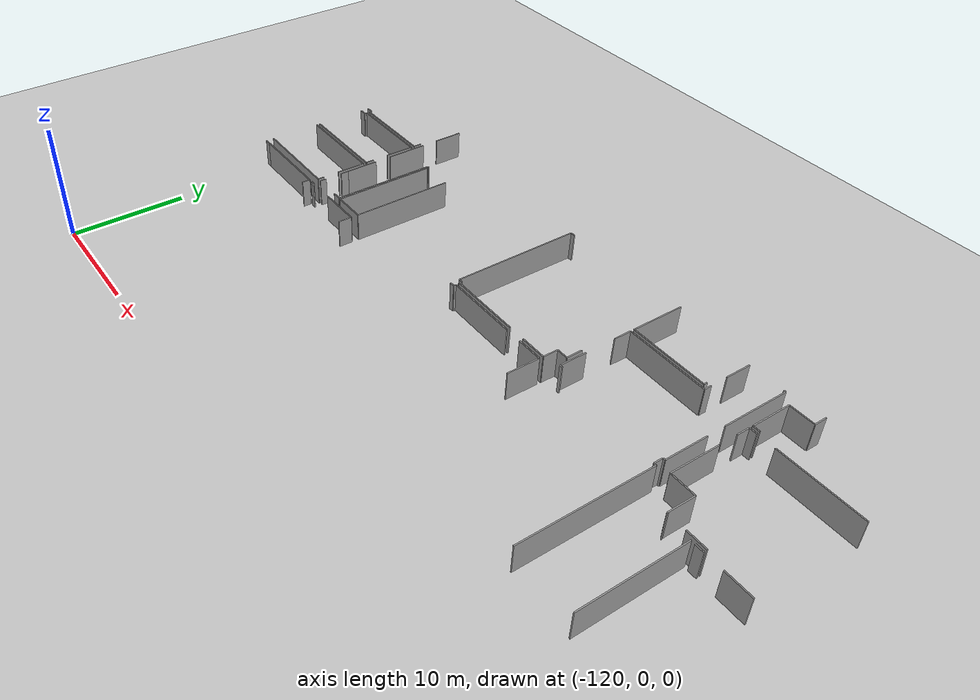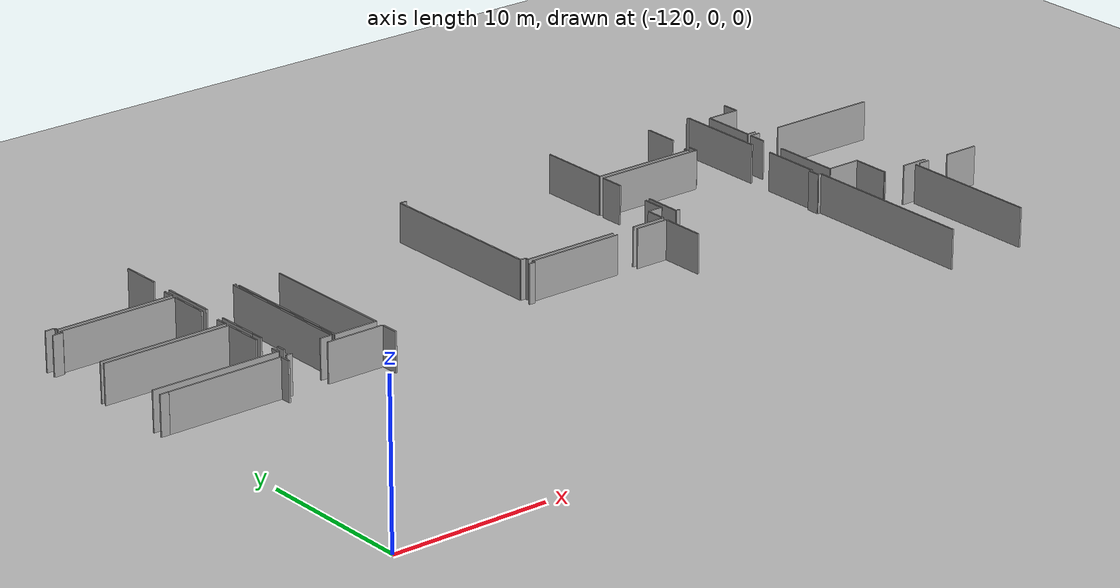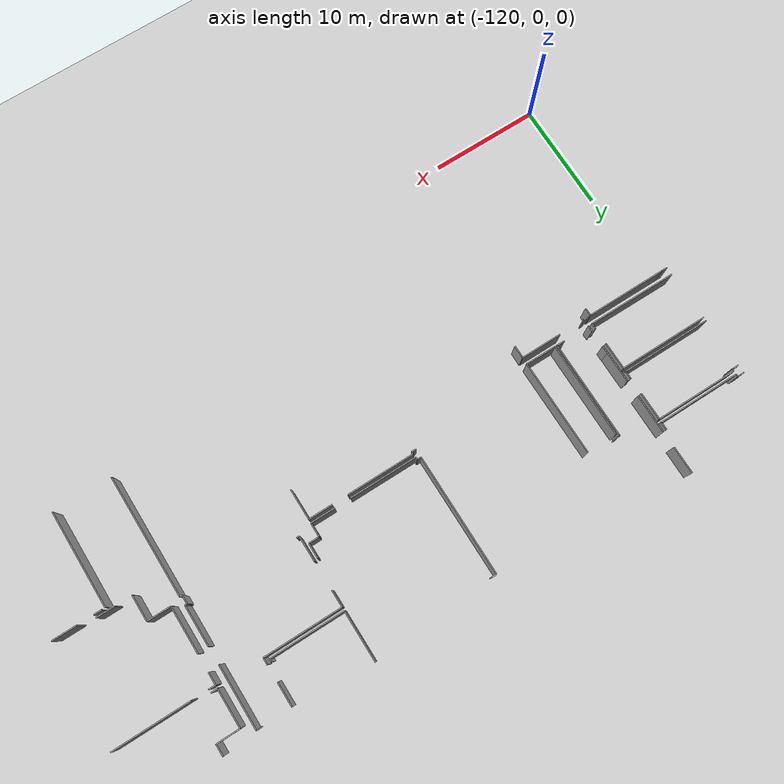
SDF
<sdf version="1.6">
 <world name="default">
  <model name="ground_plane">
   <static>1</static>
   <link name="link">
    <collision name="collision">
     <geometry><plane><normal>0 0 1</normal><size>100 100</size></plane></geometry>
     <surface><friction><ode><mu>100</mu><mu2>50</mu2></ode></friction></surface>
    </collision>
    <visual name="visual">
     <cast_shadows>0</cast_shadows>
     <geometry><plane><normal>0 0 1</normal><size>100 100</size></plane></geometry>
     <material>
      <script><uri>file://media/materials/scripts/gazebo.material</uri><name>Gazebo/Grey</name></script>
     </material>
    </visual>
   </link>
  </model>
  <model name="0510045922_A-40">
   <static>1</static>
   <link name="Wall_515">
    <collision name="Wall_515_Collision">
     <geometry><box><size>0.633665882951 0.1 2.5</size></box></geometry>
     <pose>0.316832941476 0 1.25 0 0 0</pose>
    </collision>
    <visual name="Wall_515_Visual">
     <pose>0.316832941476 0 1.25 0 0 0</pose>
     <geometry><box><size>0.633665882951 0.1 2.5</size></box></geometry>
     <material>
      <script><uri>file://media/materials/scripts/gazebo.material</uri><name>Gazebo/Grey</name></script>
      <ambient>1 1 1 1</ambient>
     </material>
    </visual>
    <pose>13.913757387 -70.9655970007 0 0 0 3.14159265359</pose>
   </link>
   <link name="Wall_518">
    <collision name="Wall_518_Collision">
     <geometry><box><size>0.728728474296 0.1 2.5</size></box></geometry>
     <pose>0.364364237148 0 1.25 0 0 0</pose>
    </collision>
    <visual name="Wall_518_Visual">
     <pose>0.364364237148 0 1.25 0 0 0</pose>
     <geometry><box><size>0.728728474296 0.1 2.5</size></box></geometry>
     <material>
      <script><uri>file://media/materials/scripts/gazebo.material</uri><name>Gazebo/Grey</name></script>
      <ambient>1 1 1 1</ambient>
     </material>
    </visual>
    <pose>21.6140814641 -70.4689330876 0 0 0 -1.57079632679</pose>
   </link>
   <link name="Wall_519">
    <collision name="Wall_519_Collision">
     <geometry><box><size>7.66295990341 0.1 2.5</size></box></geometry>
     <pose>3.83147995171 0 1.25 0 0 0</pose>
    </collision>
    <visual name="Wall_519_Visual">
     <pose>3.83147995171 0 1.25 0 0 0</pose>
     <geometry><box><size>7.66295990341 0.1 2.5</size></box></geometry>
     <material>
      <script><uri>file://media/materials/scripts/gazebo.material</uri><name>Gazebo/Grey</name></script>
      <ambient>1 1 1 1</ambient>
     </material>
    </visual>
    <pose>21.6140814641 -71.1976615619 0 0 0 3.14159265359</pose>
   </link>
   <link name="Wall_520">
    <collision name="Wall_520_Collision">
     <geometry><box><size>0.23505327491 0.1 2.5</size></box></geometry>
     <pose>0.117526637455 0 1.25 0 0 0</pose>
    </collision>
    <visual name="Wall_520_Visual">
     <pose>0.117526637455 0 1.25 0 0 0</pose>
     <geometry><box><size>0.23505327491 0.1 2.5</size></box></geometry>
     <material>
      <script><uri>file://media/materials/scripts/gazebo.material</uri><name>Gazebo/Grey</name></script>
      <ambient>1 1 1 1</ambient>
     </material>
    </visual>
    <pose>13.9511215607 -71.1976615619 0 0 0 1.73043394889</pose>
   </link>
   <link name="Wall_521">
    <collision name="Wall_521_Collision">
     <geometry><box><size>7.67922729872 0.1 2.5</size></box></geometry>
     <pose>3.83961364936 0 1.25 0 0 0</pose>
    </collision>
    <visual name="Wall_521_Visual">
     <pose>3.83961364936 0 1.25 0 0 0</pose>
     <geometry><box><size>7.67922729872 0.1 2.5</size></box></geometry>
     <material>
      <script><uri>file://media/materials/scripts/gazebo.material</uri><name>Gazebo/Grey</name></script>
      <ambient>1 1 1 1</ambient>
     </material>
    </visual>
    <pose>13.9162991676 -71.5141132363 0 0 0 0.0</pose>
   </link>
   <link name="Wall_522">
    <collision name="Wall_522_Collision">
     <geometry><box><size>2.5926161276 0.1 2.5</size></box></geometry>
     <pose>1.2963080638 0 1.25 0 0 0</pose>
    </collision>
    <visual name="Wall_522_Visual">
     <pose>1.2963080638 0 1.25 0 0 0</pose>
     <geometry><box><size>2.5926161276 0.1 2.5</size></box></geometry>
     <material>
      <script><uri>file://media/materials/scripts/gazebo.material</uri><name>Gazebo/Grey</name></script>
      <ambient>1 1 1 1</ambient>
     </material>
    </visual>
    <pose>21.5955264663 -71.5141132363 0 0 0 -1.57079632679</pose>
   </link>
   <link name="Wall_523">
    <collision name="Wall_523_Collision">
     <geometry><box><size>0.7513503209 0.1 2.5</size></box></geometry>
     <pose>0.37567516045 0 1.25 0 0 0</pose>
    </collision>
    <visual name="Wall_523_Visual">
     <pose>0.37567516045 0 1.25 0 0 0</pose>
     <geometry><box><size>0.7513503209 0.1 2.5</size></box></geometry>
     <material>
      <script><uri>file://media/materials/scripts/gazebo.material</uri><name>Gazebo/Grey</name></script>
      <ambient>1 1 1 1</ambient>
     </material>
    </visual>
    <pose>21.5955264663 -75.5842663786 0 0 0 -1.57079632679</pose>
   </link>
   <link name="Wall_524">
    <collision name="Wall_524_Collision">
     <geometry><box><size>8.33093982335 0.1 2.5</size></box></geometry>
     <pose>4.16546991167 0 1.25 0 0 0</pose>
    </collision>
    <visual name="Wall_524_Visual">
     <pose>4.16546991167 0 1.25 0 0 0</pose>
     <geometry><box><size>8.33093982335 0.1 2.5</size></box></geometry>
     <material>
      <script><uri>file://media/materials/scripts/gazebo.material</uri><name>Gazebo/Grey</name></script>
      <ambient>1 1 1 1</ambient>
     </material>
    </visual>
    <pose>21.5955264663 -76.3356166995 0 0 0 3.14159265359</pose>
   </link>
   <link name="Wall_525">
    <collision name="Wall_525_Collision">
     <geometry><box><size>0.643578826968 0.1 2.5</size></box></geometry>
     <pose>0.321789413484 0 1.25 0 0 0</pose>
    </collision>
    <visual name="Wall_525_Visual">
     <pose>0.321789413484 0 1.25 0 0 0</pose>
     <geometry><box><size>0.643578826968 0.1 2.5</size></box></geometry>
     <material>
      <script><uri>file://media/materials/scripts/gazebo.material</uri><name>Gazebo/Grey</name></script>
      <ambient>1 1 1 1</ambient>
     </material>
    </visual>
    <pose>13.2645866429 -71.7250810193 0 0 0 0.0</pose>
   </link>
   <link name="Wall_526">
    <collision name="Wall_526_Collision">
     <geometry><box><size>0.211124518881 0.1 2.5</size></box></geometry>
     <pose>0.105562259441 0 1.25 0 0 0</pose>
    </collision>
    <visual name="Wall_526_Visual">
     <pose>0.105562259441 0 1.25 0 0 0</pose>
     <geometry><box><size>0.211124518881 0.1 2.5</size></box></geometry>
     <material>
      <script><uri>file://media/materials/scripts/gazebo.material</uri><name>Gazebo/Grey</name></script>
      <ambient>1 1 1 1</ambient>
     </material>
    </visual>
    <pose>13.9081654699 -71.7250810193 0 0 0 1.53226119559</pose>
   </link>
   <link name="Wall_527">
    <collision name="Wall_527_Collision">
     <geometry><box><size>8.31568914024 0.1 2.5</size></box></geometry>
     <pose>4.15784457012 0 1.25 0 0 0</pose>
    </collision>
    <visual name="Wall_527_Visual">
     <pose>4.15784457012 0 1.25 0 0 0</pose>
     <geometry><box><size>8.31568914024 0.1 2.5</size></box></geometry>
     <material>
      <script><uri>file://media/materials/scripts/gazebo.material</uri><name>Gazebo/Grey</name></script>
      <ambient>1 1 1 1</ambient>
     </material>
    </visual>
    <pose>13.2788206138 -76.6637605643 0 0 0 0.0</pose>
   </link>
   <link name="Wall_528">
    <collision name="Wall_528_Collision">
     <geometry><box><size>2.57609455424 0.1 2.5</size></box></geometry>
     <pose>1.28804727712 0 1.25 0 0 0</pose>
    </collision>
    <visual name="Wall_528_Visual">
     <pose>1.28804727712 0 1.25 0 0 0</pose>
     <geometry><box><size>2.57609455424 0.1 2.5</size></box></geometry>
     <material>
      <script><uri>file://media/materials/scripts/gazebo.material</uri><name>Gazebo/Grey</name></script>
      <ambient>1 1 1 1</ambient>
     </material>
    </visual>
    <pose>21.5945097541 -76.6637605643 0 0 0 -1.57079632679</pose>
   </link>
   <link name="Wall_529">
    <collision name="Wall_529_Collision">
     <geometry><box><size>0.563512740675 0.1 2.5</size></box></geometry>
     <pose>0.281756370337 0 1.25 0 0 0</pose>
    </collision>
    <visual name="Wall_529_Visual">
     <pose>0.281756370337 0 1.25 0 0 0</pose>
     <geometry><box><size>0.563512740675 0.1 2.5</size></box></geometry>
     <material>
      <script><uri>file://media/materials/scripts/gazebo.material</uri><name>Gazebo/Grey</name></script>
      <ambient>1 1 1 1</ambient>
     </material>
    </visual>
    <pose>21.5945097541 -80.7285759675 0 0 0 -1.57079632679</pose>
   </link>
   <link name="Wall_530">
    <collision name="Wall_530_Collision">
     <geometry><box><size>8.31576419453 0.1 2.5</size></box></geometry>
     <pose>4.15788209726 0 1.25 0 0 0</pose>
    </collision>
    <visual name="Wall_530_Visual">
     <pose>4.15788209726 0 1.25 0 0 0</pose>
     <geometry><box><size>8.31576419453 0.1 2.5</size></box></geometry>
     <material>
      <script><uri>file://media/materials/scripts/gazebo.material</uri><name>Gazebo/Grey</name></script>
      <ambient>1 1 1 1</ambient>
     </material>
    </visual>
    <pose>21.5945097541 -81.2920887081 0 0 0 3.1373439935</pose>
   </link>
   <link name="Wall_531">
    <collision name="Wall_531_Collision">
     <geometry><box><size>7.46063417424 0.1 2.5</size></box></geometry>
     <pose>3.73031708712 0 1.25 0 0 0</pose>
    </collision>
    <visual name="Wall_531_Visual">
     <pose>3.73031708712 0 1.25 0 0 0</pose>
     <geometry><box><size>7.46063417424 0.1 2.5</size></box></geometry>
     <material>
      <script><uri>file://media/materials/scripts/gazebo.material</uri><name>Gazebo/Grey</name></script>
      <ambient>1 1 1 1</ambient>
     </material>
    </visual>
    <pose>13.8227616445 -81.9770985575 0 0 0 0.0</pose>
   </link>
   <link name="Wall_532">
    <collision name="Wall_532_Collision">
     <geometry><box><size>0.71017347652 0.1 2.5</size></box></geometry>
     <pose>0.35508673826 0 1.25 0 0 0</pose>
    </collision>
    <visual name="Wall_532_Visual">
     <pose>0.35508673826 0 1.25 0 0 0</pose>
     <geometry><box><size>0.71017347652 0.1 2.5</size></box></geometry>
     <material>
      <script><uri>file://media/materials/scripts/gazebo.material</uri><name>Gazebo/Grey</name></script>
      <ambient>1 1 1 1</ambient>
     </material>
    </visual>
    <pose>21.2833958188 -81.9770985575 0 0 0 -1.57079632679</pose>
   </link>
   <link name="Wall_535">
    <collision name="Wall_535_Collision">
     <geometry><box><size>0.556654633811 0.1 2.5</size></box></geometry>
     <pose>0.278327316906 0 1.25 0 0 0</pose>
    </collision>
    <visual name="Wall_535_Visual">
     <pose>0.278327316906 0 1.25 0 0 0</pose>
     <geometry><box><size>0.556654633811 0.1 2.5</size></box></geometry>
     <material>
      <script><uri>file://media/materials/scripts/gazebo.material</uri><name>Gazebo/Grey</name></script>
      <ambient>1 1 1 1</ambient>
     </material>
    </visual>
    <pose>13.2661117113 -81.9748109551 0 0 0 -0.0041095659061</pose>
   </link>
   <link name="Wall_540">
    <collision name="Wall_540_Collision">
     <geometry><box><size>2.864840821 0.1 2.5</size></box></geometry>
     <pose>1.4324204105 0 1.25 0 0 0</pose>
    </collision>
    <visual name="Wall_540_Visual">
     <pose>1.4324204105 0 1.25 0 0 0</pose>
     <geometry><box><size>2.864840821 0.1 2.5</size></box></geometry>
     <material>
      <script><uri>file://media/materials/scripts/gazebo.material</uri><name>Gazebo/Grey</name></script>
      <ambient>1 1 1 1</ambient>
     </material>
    </visual>
    <pose>28.2361822457 -81.3096269937 0 0 0 3.14159265359</pose>
   </link>
   <link name="Wall_541">
    <collision name="Wall_541_Collision">
     <geometry><box><size>8.96435152825 0.1 2.5</size></box></geometry>
     <pose>4.48217576412 0 1.25 0 0 0</pose>
    </collision>
    <visual name="Wall_541_Visual">
     <pose>4.48217576412 0 1.25 0 0 0</pose>
     <geometry><box><size>8.96435152825 0.1 2.5</size></box></geometry>
     <material>
      <script><uri>file://media/materials/scripts/gazebo.material</uri><name>Gazebo/Grey</name></script>
      <ambient>1 1 1 1</ambient>
     </material>
    </visual>
    <pose>25.3713414247 -81.3096269937 0 0 0 1.57079632679</pose>
   </link>
   <link name="Wall_542">
    <collision name="Wall_542_Collision">
     <geometry><box><size>8.96444609859 0.1 2.5</size></box></geometry>
     <pose>4.48222304929 0 1.25 0 0 0</pose>
    </collision>
    <visual name="Wall_542_Visual">
     <pose>4.48222304929 0 1.25 0 0 0</pose>
     <geometry><box><size>8.96444609859 0.1 2.5</size></box></geometry>
     <material>
      <script><uri>file://media/materials/scripts/gazebo.material</uri><name>Gazebo/Grey</name></script>
      <ambient>1 1 1 1</ambient>
     </material>
    </visual>
    <pose>28.1950054013 -72.3452754655 0 0 0 -1.56620295999</pose>
   </link>
   <link name="Wall_543">
    <collision name="Wall_543_Collision">
     <geometry><box><size>2.91338882887 0.1 2.5</size></box></geometry>
     <pose>1.45669441444 0 1.25 0 0 0</pose>
    </collision>
    <visual name="Wall_543_Visual">
     <pose>1.45669441444 0 1.25 0 0 0</pose>
     <geometry><box><size>2.91338882887 0.1 2.5</size></box></geometry>
     <material>
      <script><uri>file://media/materials/scripts/gazebo.material</uri><name>Gazebo/Grey</name></script>
      <ambient>1 1 1 1</ambient>
     </material>
    </visual>
    <pose>21.9546800534 -78.4620702802 0 0 0 1.57079632679</pose>
   </link>
   <link name="Wall_544">
    <collision name="Wall_544_Collision">
     <geometry><box><size>3.62839168838 0.1 2.5</size></box></geometry>
     <pose>1.81419584419 0 1.25 0 0 0</pose>
    </collision>
    <visual name="Wall_544_Visual">
     <pose>1.81419584419 0 1.25 0 0 0</pose>
     <geometry><box><size>3.62839168838 0.1 2.5</size></box></geometry>
     <material>
      <script><uri>file://media/materials/scripts/gazebo.material</uri><name>Gazebo/Grey</name></script>
      <ambient>1 1 1 1</ambient>
     </material>
    </visual>
    <pose>21.9546800534 -74.0564021097 0 0 0 1.57079632679</pose>
   </link>
   <link name="Wall_545">
    <collision name="Wall_545_Collision">
     <geometry><box><size>2.55423524179 0.1 2.5</size></box></geometry>
     <pose>1.27711762089 0 1.25 0 0 0</pose>
    </collision>
    <visual name="Wall_545_Visual">
     <pose>1.27711762089 0 1.25 0 0 0</pose>
     <geometry><box><size>2.55423524179 0.1 2.5</size></box></geometry>
     <material>
      <script><uri>file://media/materials/scripts/gazebo.material</uri><name>Gazebo/Grey</name></script>
      <ambient>1 1 1 1</ambient>
     </material>
    </visual>
    <pose>21.9546800534 -68.9476774481 0 0 0 1.57079632679</pose>
   </link>
   <link name="Wall_549">
    <collision name="Wall_549_Collision">
     <geometry><box><size>0.180466416725 0.1 2.5</size></box></geometry>
     <pose>0.0902332083625 0 1.25 0 0 0</pose>
    </collision>
    <visual name="Wall_549_Visual">
     <pose>0.0902332083625 0 1.25 0 0 0</pose>
     <geometry><box><size>0.180466416725 0.1 2.5</size></box></geometry>
     <material>
      <script><uri>file://media/materials/scripts/gazebo.material</uri><name>Gazebo/Grey</name></script>
      <ambient>1 1 1 1</ambient>
     </material>
    </visual>
    <pose>25.3571074538 -72.1246489166 0 0 0 3.14159265359</pose>
   </link>
   <link name="Wall_550">
    <collision name="Wall_550_Collision">
     <geometry><box><size>9.16261040859 0.1 2.5</size></box></geometry>
     <pose>4.5813052043 0 1.25 0 0 0</pose>
    </collision>
    <visual name="Wall_550_Visual">
     <pose>4.5813052043 0 1.25 0 0 0</pose>
     <geometry><box><size>9.16261040859 0.1 2.5</size></box></geometry>
     <material>
      <script><uri>file://media/materials/scripts/gazebo.material</uri><name>Gazebo/Grey</name></script>
      <ambient>1 1 1 1</ambient>
     </material>
    </visual>
    <pose>25.176641037 -72.1246489166 0 0 0 -1.57079632679</pose>
   </link>
   <link name="Wall_551">
    <collision name="Wall_551_Collision">
     <geometry><box><size>0.772955455296 0.1 2.5</size></box></geometry>
     <pose>0.386477727648 0 1.25 0 0 0</pose>
    </collision>
    <visual name="Wall_551_Visual">
     <pose>0.386477727648 0 1.25 0 0 0</pose>
     <geometry><box><size>0.772955455296 0.1 2.5</size></box></geometry>
     <material>
      <script><uri>file://media/materials/scripts/gazebo.material</uri><name>Gazebo/Grey</name></script>
      <ambient>1 1 1 1</ambient>
     </material>
    </visual>
    <pose>25.176641037 -81.2872593252 0 0 0 3.14159265359</pose>
   </link>
   <link name="Wall_552">
    <collision name="Wall_552_Collision">
     <geometry><box><size>0.576221643261 0.1 2.5</size></box></geometry>
     <pose>0.288110821631 0 1.25 0 0 0</pose>
    </collision>
    <visual name="Wall_552_Visual">
     <pose>0.288110821631 0 1.25 0 0 0</pose>
     <geometry><box><size>0.576221643261 0.1 2.5</size></box></geometry>
     <material>
      <script><uri>file://media/materials/scripts/gazebo.material</uri><name>Gazebo/Grey</name></script>
      <ambient>1 1 1 1</ambient>
     </material>
    </visual>
    <pose>21.9666264218 -81.2872593252 0 0 0 1.57079632679</pose>
   </link>
   <link name="Wall_553">
    <collision name="Wall_553_Collision">
     <geometry><box><size>0.714594368231 0.1 2.5</size></box></geometry>
     <pose>0.357297184115 0 1.25 0 0 0</pose>
    </collision>
    <visual name="Wall_553_Visual">
     <pose>0.357297184115 0 1.25 0 0 0</pose>
     <geometry><box><size>0.714594368231 0.1 2.5</size></box></geometry>
     <material>
      <script><uri>file://media/materials/scripts/gazebo.material</uri><name>Gazebo/Grey</name></script>
      <ambient>1 1 1 1</ambient>
     </material>
    </visual>
    <pose>21.9666264218 -79.1765647836 0 0 0 1.58751479744</pose>
   </link>
   <link name="Wall_556">
    <collision name="Wall_556_Collision">
     <geometry><box><size>0.364745504226 0.1 2.5</size></box></geometry>
     <pose>0.182372752113 0 1.25 0 0 0</pose>
    </collision>
    <visual name="Wall_556_Visual">
     <pose>0.182372752113 0 1.25 0 0 0</pose>
     <geometry><box><size>0.364745504226 0.1 2.5</size></box></geometry>
     <material>
      <script><uri>file://media/materials/scripts/gazebo.material</uri><name>Gazebo/Grey</name></script>
      <ambient>1 1 1 1</ambient>
     </material>
    </visual>
    <pose>21.6184024909 -81.9577810256 0 0 0 0.0</pose>
   </link>
   <link name="Wall_557">
    <collision name="Wall_557_Collision">
     <geometry><box><size>3.80504543433 0.1 2.5</size></box></geometry>
     <pose>1.90252271716 0 1.25 0 0 0</pose>
    </collision>
    <visual name="Wall_557_Visual">
     <pose>1.90252271716 0 1.25 0 0 0</pose>
     <geometry><box><size>3.80504543433 0.1 2.5</size></box></geometry>
     <material>
      <script><uri>file://media/materials/scripts/gazebo.material</uri><name>Gazebo/Grey</name></script>
      <ambient>1 1 1 1</ambient>
     </material>
    </visual>
    <pose>24.4118192794 -81.9577810256 0 0 0 0.0</pose>
   </link>
   <link name="Wall_558">
    <collision name="Wall_558_Collision">
     <geometry><box><size>1.1857406113 0.1 2.5</size></box></geometry>
     <pose>0.592870305649 0 1.25 0 0 0</pose>
    </collision>
    <visual name="Wall_558_Visual">
     <pose>0.592870305649 0 1.25 0 0 0</pose>
     <geometry><box><size>1.1857406113 0.1 2.5</size></box></geometry>
     <material>
      <script><uri>file://media/materials/scripts/gazebo.material</uri><name>Gazebo/Grey</name></script>
      <ambient>1 1 1 1</ambient>
     </material>
    </visual>
    <pose>28.2168647137 -81.9577810256 0 0 0 -1.57079632679</pose>
   </link>
   <link name="Wall_591">
    <collision name="Wall_591_Collision">
     <geometry><box><size>0.408972485226 0.1 2.5</size></box></geometry>
     <pose>0.204486242613 0 1.25 0 0 0</pose>
    </collision>
    <visual name="Wall_591_Visual">
     <pose>0.204486242613 0 1.25 0 0 0</pose>
     <geometry><box><size>0.408972485226 0.1 2.5</size></box></geometry>
     <material>
      <script><uri>file://media/materials/scripts/gazebo.material</uri><name>Gazebo/Grey</name></script>
      <ambient>1 1 1 1</ambient>
     </material>
    </visual>
    <pose>39.9903920696 -80.175992883 0 0 0 0.0</pose>
   </link>
   <link name="Wall_592">
    <collision name="Wall_592_Collision">
     <geometry><box><size>0.214780453708 0.1 2.5</size></box></geometry>
     <pose>0.107390226854 0 1.25 0 0 0</pose>
    </collision>
    <visual name="Wall_592_Visual">
     <pose>0.107390226854 0 1.25 0 0 0</pose>
     <geometry><box><size>0.214780453708 0.1 2.5</size></box></geometry>
     <material>
      <script><uri>file://media/materials/scripts/gazebo.material</uri><name>Gazebo/Grey</name></script>
      <ambient>1 1 1 1</ambient>
     </material>
    </visual>
    <pose>40.3993645549 -80.175992883 0 0 0 1.57079632679</pose>
   </link>
   <link name="Wall_593">
    <collision name="Wall_593_Collision">
     <geometry><box><size>6.30819088772 0.1 2.5</size></box></geometry>
     <pose>3.15409544386 0 1.25 0 0 0</pose>
    </collision>
    <visual name="Wall_593_Visual">
     <pose>3.15409544386 0 1.25 0 0 0</pose>
     <geometry><box><size>6.30819088772 0.1 2.5</size></box></geometry>
     <material>
      <script><uri>file://media/materials/scripts/gazebo.material</uri><name>Gazebo/Grey</name></script>
      <ambient>1 1 1 1</ambient>
     </material>
    </visual>
    <pose>40.3993645549 -79.9612124293 0 0 0 0.0</pose>
   </link>
   <link name="Wall_594">
    <collision name="Wall_594_Collision">
     <geometry><box><size>2.21617843299 0.1 2.5</size></box></geometry>
     <pose>1.1080892165 0 1.25 0 0 0</pose>
    </collision>
    <visual name="Wall_594_Visual">
     <pose>1.1080892165 0 1.25 0 0 0</pose>
     <geometry><box><size>2.21617843299 0.1 2.5</size></box></geometry>
     <material>
      <script><uri>file://media/materials/scripts/gazebo.material</uri><name>Gazebo/Grey</name></script>
      <ambient>1 1 1 1</ambient>
     </material>
    </visual>
    <pose>48.1965304696 -79.9612124293 0 0 0 0.0</pose>
   </link>
   <link name="Wall_595">
    <collision name="Wall_595_Collision">
     <geometry><box><size>2.84831924763 0.1 2.5</size></box></geometry>
     <pose>1.42415962382 0 1.25 0 0 0</pose>
    </collision>
    <visual name="Wall_595_Visual">
     <pose>1.42415962382 0 1.25 0 0 0</pose>
     <geometry><box><size>2.84831924763 0.1 2.5</size></box></geometry>
     <material>
      <script><uri>file://media/materials/scripts/gazebo.material</uri><name>Gazebo/Grey</name></script>
      <ambient>1 1 1 1</ambient>
     </material>
    </visual>
    <pose>50.4127089026 -79.9612124293 0 0 0 -1.57079632679</pose>
   </link>
   <link name="Wall_605">
    <collision name="Wall_605_Collision">
     <geometry><box><size>11.2318739277 0.1 2.5</size></box></geometry>
     <pose>5.61593696384 0 1.25 0 0 0</pose>
    </collision>
    <visual name="Wall_605_Visual">
     <pose>5.61593696384 0 1.25 0 0 0</pose>
     <geometry><box><size>11.2318739277 0.1 2.5</size></box></geometry>
     <material>
      <script><uri>file://media/materials/scripts/gazebo.material</uri><name>Gazebo/Grey</name></script>
      <ambient>1 1 1 1</ambient>
     </material>
    </visual>
    <pose>40.0064052869 -79.3905827032 0 0 0 1.57079632679</pose>
   </link>
   <link name="Wall_606">
    <collision name="Wall_606_Collision">
     <geometry><box><size>0.419393785347 0.1 2.5</size></box></geometry>
     <pose>0.209696892673 0 1.25 0 0 0</pose>
    </collision>
    <visual name="Wall_606_Visual">
     <pose>0.209696892673 0 1.25 0 0 0</pose>
     <geometry><box><size>0.419393785347 0.1 2.5</size></box></geometry>
     <material>
      <script><uri>file://media/materials/scripts/gazebo.material</uri><name>Gazebo/Grey</name></script>
      <ambient>1 1 1 1</ambient>
     </material>
    </visual>
    <pose>40.0064052869 -68.1587087755 0 0 0 0.0</pose>
   </link>
   <link name="Wall_621">
    <collision name="Wall_621_Collision">
     <geometry><box><size>1.42720976044 0.1 2.5</size></box></geometry>
     <pose>0.713604880219 0 1.25 0 0 0</pose>
    </collision>
    <visual name="Wall_621_Visual">
     <pose>0.713604880219 0 1.25 0 0 0</pose>
     <geometry><box><size>1.42720976044 0.1 2.5</size></box></geometry>
     <material>
      <script><uri>file://media/materials/scripts/gazebo.material</uri><name>Gazebo/Grey</name></script>
      <ambient>1 1 1 1</ambient>
     </material>
    </visual>
    <pose>51.4284043973 -76.8810827985 0 0 0 -1.57079632679</pose>
   </link>
   <link name="Wall_622">
    <collision name="Wall_622_Collision">
     <geometry><box><size>0.986465018746 0.1 2.5</size></box></geometry>
     <pose>0.493232509373 0 1.25 0 0 0</pose>
    </collision>
    <visual name="Wall_622_Visual">
     <pose>0.493232509373 0 1.25 0 0 0</pose>
     <geometry><box><size>0.986465018746 0.1 2.5</size></box></geometry>
     <material>
      <script><uri>file://media/materials/scripts/gazebo.material</uri><name>Gazebo/Grey</name></script>
      <ambient>1 1 1 1</ambient>
     </material>
    </visual>
    <pose>51.4284043973 -78.3082925589 0 0 0 3.14159265359</pose>
   </link>
   <link name="Wall_623">
    <collision name="Wall_623_Collision">
     <geometry><box><size>1.31003367859 0.1 2.5</size></box></geometry>
     <pose>0.655016839296 0 1.25 0 0 0</pose>
    </collision>
    <visual name="Wall_623_Visual">
     <pose>0.655016839296 0 1.25 0 0 0</pose>
     <geometry><box><size>1.31003367859 0.1 2.5</size></box></geometry>
     <material>
      <script><uri>file://media/materials/scripts/gazebo.material</uri><name>Gazebo/Grey</name></script>
      <ambient>1 1 1 1</ambient>
     </material>
    </visual>
    <pose>50.4419393785 -78.3082925589 0 0 0 -1.57079632679</pose>
   </link>
   <link name="Wall_624">
    <collision name="Wall_624_Collision">
     <geometry><box><size>2.27209760437 0.1 2.5</size></box></geometry>
     <pose>1.13604880219 0 1.25 0 0 0</pose>
    </collision>
    <visual name="Wall_624_Visual">
     <pose>1.13604880219 0 1.25 0 0 0</pose>
     <geometry><box><size>2.27209760437 0.1 2.5</size></box></geometry>
     <material>
      <script><uri>file://media/materials/scripts/gazebo.material</uri><name>Gazebo/Grey</name></script>
      <ambient>1 1 1 1</ambient>
     </material>
    </visual>
    <pose>50.4419393785 -79.6183262375 0 0 0 3.14159265359</pose>
   </link>
   <link name="Wall_625">
    <collision name="Wall_625_Collision">
     <geometry><box><size>6.27540191904 0.1 2.5</size></box></geometry>
     <pose>3.13770095952 0 1.25 0 0 0</pose>
    </collision>
    <visual name="Wall_625_Visual">
     <pose>3.13770095952 0 1.25 0 0 0</pose>
     <geometry><box><size>6.27540191904 0.1 2.5</size></box></geometry>
     <material>
      <script><uri>file://media/materials/scripts/gazebo.material</uri><name>Gazebo/Grey</name></script>
      <ambient>1 1 1 1</ambient>
     </material>
    </visual>
    <pose>46.6536696956 -79.6183262375 0 0 0 3.14159265359</pose>
   </link>
   <link name="Wall_626">
    <collision name="Wall_626_Collision">
     <geometry><box><size>0.228251890449 0.1 2.5</size></box></geometry>
     <pose>0.114125945225 0 1.25 0 0 0</pose>
    </collision>
    <visual name="Wall_626_Visual">
     <pose>0.114125945225 0 1.25 0 0 0</pose>
     <geometry><box><size>0.228251890449 0.1 2.5</size></box></geometry>
     <material>
      <script><uri>file://media/materials/scripts/gazebo.material</uri><name>Gazebo/Grey</name></script>
      <ambient>1 1 1 1</ambient>
     </material>
    </visual>
    <pose>40.3782677766 -79.6183262375 0 0 0 1.57079632679</pose>
   </link>
   <link name="Wall_627">
    <collision name="Wall_627_Collision">
     <geometry><box><size>0.371862837149 0.1 2.5</size></box></geometry>
     <pose>0.185931418574 0 1.25 0 0 0</pose>
    </collision>
    <visual name="Wall_627_Visual">
     <pose>0.185931418574 0 1.25 0 0 0</pose>
     <geometry><box><size>0.371862837149 0.1 2.5</size></box></geometry>
     <material>
      <script><uri>file://media/materials/scripts/gazebo.material</uri><name>Gazebo/Grey</name></script>
      <ambient>1 1 1 1</ambient>
     </material>
    </visual>
    <pose>40.3782677766 -79.3900743471 0 0 0 -3.14022560044</pose>
   </link>
   <link name="Wall_633">
    <collision name="Wall_633_Collision">
     <geometry><box><size>4.69593950562 0.1 2.5</size></box></geometry>
     <pose>2.34796975281 0 1.25 0 0 0</pose>
    </collision>
    <visual name="Wall_633_Visual">
     <pose>2.34796975281 0 1.25 0 0 0</pose>
     <geometry><box><size>4.69593950562 0.1 2.5</size></box></geometry>
     <material>
      <script><uri>file://media/materials/scripts/gazebo.material</uri><name>Gazebo/Grey</name></script>
      <ambient>1 1 1 1</ambient>
     </material>
    </visual>
    <pose>51.7804409989 -72.2408082862 0 0 0 1.57079632679</pose>
   </link>
   <link name="Wall_636">
    <collision name="Wall_636_Collision">
     <geometry><box><size>0.301200991294 0.1 2.5</size></box></geometry>
     <pose>0.150600495647 0 1.25 0 0 0</pose>
    </collision>
    <visual name="Wall_636_Visual">
     <pose>0.150600495647 0 1.25 0 0 0</pose>
     <geometry><box><size>0.301200991294 0.1 2.5</size></box></geometry>
     <material>
      <script><uri>file://media/materials/scripts/gazebo.material</uri><name>Gazebo/Grey</name></script>
      <ambient>1 1 1 1</ambient>
     </material>
    </visual>
    <pose>58.665361886 -71.9454533901 0 0 0 -1.57079632679</pose>
   </link>
   <link name="Wall_637">
    <collision name="Wall_637_Collision">
     <geometry><box><size>6.88492336909 0.1 2.5</size></box></geometry>
     <pose>3.44246168454 0 1.25 0 0 0</pose>
    </collision>
    <visual name="Wall_637_Visual">
     <pose>3.44246168454 0 1.25 0 0 0</pose>
     <geometry><box><size>6.88492336909 0.1 2.5</size></box></geometry>
     <material>
      <script><uri>file://media/materials/scripts/gazebo.material</uri><name>Gazebo/Grey</name></script>
      <ambient>1 1 1 1</ambient>
     </material>
    </visual>
    <pose>58.665361886 -72.2466543814 0 0 0 3.14074353798</pose>
   </link>
   <link name="Wall_639">
    <collision name="Wall_639_Collision">
     <geometry><box><size>0.248331956536 0.1 2.5</size></box></geometry>
     <pose>0.124165978268 0 1.25 0 0 0</pose>
    </collision>
    <visual name="Wall_639_Visual">
     <pose>0.124165978268 0 1.25 0 0 0</pose>
     <geometry><box><size>0.248331956536 0.1 2.5</size></box></geometry>
     <material>
      <script><uri>file://media/materials/scripts/gazebo.material</uri><name>Gazebo/Grey</name></script>
      <ambient>1 1 1 1</ambient>
     </material>
    </visual>
    <pose>52.0241977505 -79.2157082036 0 0 0 3.14159265359</pose>
   </link>
   <link name="Wall_640">
    <collision name="Wall_640_Collision">
     <geometry><box><size>2.3793607422 0.1 2.5</size></box></geometry>
     <pose>1.1896803711 0 1.25 0 0 0</pose>
    </collision>
    <visual name="Wall_640_Visual">
     <pose>1.1896803711 0 1.25 0 0 0</pose>
     <geometry><box><size>2.3793607422 0.1 2.5</size></box></geometry>
     <material>
      <script><uri>file://media/materials/scripts/gazebo.material</uri><name>Gazebo/Grey</name></script>
      <ambient>1 1 1 1</ambient>
     </material>
    </visual>
    <pose>51.775865794 -79.2157082036 0 0 0 1.57079632679</pose>
   </link>
   <link name="Wall_641">
    <collision name="Wall_641_Collision">
     <geometry><box><size>1.56141577175 0.1 2.5</size></box></geometry>
     <pose>0.780707885874 0 1.25 0 0 0</pose>
    </collision>
    <visual name="Wall_641_Visual">
     <pose>0.780707885874 0 1.25 0 0 0</pose>
     <geometry><box><size>1.56141577175 0.1 2.5</size></box></geometry>
     <material>
      <script><uri>file://media/materials/scripts/gazebo.material</uri><name>Gazebo/Grey</name></script>
      <ambient>1 1 1 1</ambient>
     </material>
    </visual>
    <pose>51.775865794 -74.141297579 0 0 0 1.57079632679</pose>
   </link>
   <link name="Wall_642">
    <collision name="Wall_642_Collision">
     <geometry><box><size>7.26771303298 0.1 2.5</size></box></geometry>
     <pose>3.63385651649 0 1.25 0 0 0</pose>
    </collision>
    <visual name="Wall_642_Visual">
     <pose>3.63385651649 0 1.25 0 0 0</pose>
     <geometry><box><size>7.26771303298 0.1 2.5</size></box></geometry>
     <material>
      <script><uri>file://media/materials/scripts/gazebo.material</uri><name>Gazebo/Grey</name></script>
      <ambient>1 1 1 1</ambient>
     </material>
    </visual>
    <pose>51.775865794 -72.5798818072 0 0 0 0.0</pose>
   </link>
   <link name="Wall_643">
    <collision name="Wall_643_Collision">
     <geometry><box><size>0.634428417106 0.1 2.5</size></box></geometry>
     <pose>0.317214208553 0 1.25 0 0 0</pose>
    </collision>
    <visual name="Wall_643_Visual">
     <pose>0.317214208553 0 1.25 0 0 0</pose>
     <geometry><box><size>0.634428417106 0.1 2.5</size></box></geometry>
     <material>
      <script><uri>file://media/materials/scripts/gazebo.material</uri><name>Gazebo/Grey</name></script>
      <ambient>1 1 1 1</ambient>
     </material>
    </visual>
    <pose>59.043578827 -72.5798818072 0 0 0 1.57079632679</pose>
   </link>
   <link name="Wall_644">
    <collision name="Wall_644_Collision">
     <geometry><box><size>2.24388384063 0.1 2.5</size></box></geometry>
     <pose>1.12194192032 0 1.25 0 0 0</pose>
    </collision>
    <visual name="Wall_644_Visual">
     <pose>1.12194192032 0 1.25 0 0 0</pose>
     <geometry><box><size>2.24388384063 0.1 2.5</size></box></geometry>
     <material>
      <script><uri>file://media/materials/scripts/gazebo.material</uri><name>Gazebo/Grey</name></script>
      <ambient>1 1 1 1</ambient>
     </material>
    </visual>
    <pose>59.043578827 -70.4081845333 0 0 0 1.57079632679</pose>
   </link>
   <link name="Wall_645">
    <collision name="Wall_645_Collision">
     <geometry><box><size>0.175891211794 0.1 2.5</size></box></geometry>
     <pose>0.0879456058969 0 1.25 0 0 0</pose>
    </collision>
    <visual name="Wall_645_Visual">
     <pose>0.0879456058969 0 1.25 0 0 0</pose>
     <geometry><box><size>0.175891211794 0.1 2.5</size></box></geometry>
     <material>
      <script><uri>file://media/materials/scripts/gazebo.material</uri><name>Gazebo/Grey</name></script>
      <ambient>1 1 1 1</ambient>
     </material>
    </visual>
    <pose>62.0843108598 -68.1643006926 0 0 0 0.0</pose>
   </link>
   <link name="Wall_646">
    <collision name="Wall_646_Collision">
     <geometry><box><size>5.83745313592 0.1 2.5</size></box></geometry>
     <pose>2.91872656796 0 1.25 0 0 0</pose>
    </collision>
    <visual name="Wall_646_Visual">
     <pose>2.91872656796 0 1.25 0 0 0</pose>
     <geometry><box><size>5.83745313592 0.1 2.5</size></box></geometry>
     <material>
      <script><uri>file://media/materials/scripts/gazebo.material</uri><name>Gazebo/Grey</name></script>
      <ambient>1 1 1 1</ambient>
     </material>
    </visual>
    <pose>62.2602020716 -68.1643006926 0 0 0 -1.57079632679</pose>
   </link>
   <link name="Wall_647">
    <collision name="Wall_647_Collision">
     <geometry><box><size>3.77734002669 0.1 2.5</size></box></geometry>
     <pose>1.88867001334 0 1.25 0 0 0</pose>
    </collision>
    <visual name="Wall_647_Visual">
     <pose>1.88867001334 0 1.25 0 0 0</pose>
     <geometry><box><size>3.77734002669 0.1 2.5</size></box></geometry>
     <material>
      <script><uri>file://media/materials/scripts/gazebo.material</uri><name>Gazebo/Grey</name></script>
      <ambient>1 1 1 1</ambient>
     </material>
    </visual>
    <pose>62.2602020716 -75.6129884984 0 0 0 -1.57079632679</pose>
   </link>
   <link name="Wall_648">
    <collision name="Wall_648_Collision">
     <geometry><box><size>0.198513058397 0.1 2.5</size></box></geometry>
     <pose>0.0992565291987 0 1.25 0 0 0</pose>
    </collision>
    <visual name="Wall_648_Visual">
     <pose>0.0992565291987 0 1.25 0 0 0</pose>
     <geometry><box><size>0.198513058397 0.1 2.5</size></box></geometry>
     <material>
      <script><uri>file://media/materials/scripts/gazebo.material</uri><name>Gazebo/Grey</name></script>
      <ambient>1 1 1 1</ambient>
     </material>
    </visual>
    <pose>62.2602020716 -79.3903285251 0 0 0 3.14159265359</pose>
   </link>
   <link name="Wall_649">
    <collision name="Wall_649_Collision">
     <geometry><box><size>0.792018809176 0.1 2.5</size></box></geometry>
     <pose>0.396009404588 0 1.25 0 0 0</pose>
    </collision>
    <visual name="Wall_649_Visual">
     <pose>0.396009404588 0 1.25 0 0 0</pose>
     <geometry><box><size>0.792018809176 0.1 2.5</size></box></geometry>
     <material>
      <script><uri>file://media/materials/scripts/gazebo.material</uri><name>Gazebo/Grey</name></script>
      <ambient>1 1 1 1</ambient>
     </material>
    </visual>
    <pose>62.0616890132 -79.3903285251 0 0 0 -1.57079632679</pose>
   </link>
   <link name="Wall_650">
    <collision name="Wall_650_Collision">
     <geometry><box><size>0.219355658639 0.1 2.5</size></box></geometry>
     <pose>0.109677829319 0 1.25 0 0 0</pose>
    </collision>
    <visual name="Wall_650_Visual">
     <pose>0.109677829319 0 1.25 0 0 0</pose>
     <geometry><box><size>0.219355658639 0.1 2.5</size></box></geometry>
     <material>
      <script><uri>file://media/materials/scripts/gazebo.material</uri><name>Gazebo/Grey</name></script>
      <ambient>1 1 1 1</ambient>
     </material>
    </visual>
    <pose>62.0616890132 -80.1823473343 0 0 0 0.0</pose>
   </link>
   <link name="Wall_651">
    <collision name="Wall_651_Collision">
     <geometry><box><size>11.3698926098 0.1 2.5</size></box></geometry>
     <pose>5.68494630489 0 1.25 0 0 0</pose>
    </collision>
    <visual name="Wall_651_Visual">
     <pose>5.68494630489 0 1.25 0 0 0</pose>
     <geometry><box><size>11.3698926098 0.1 2.5</size></box></geometry>
     <material>
      <script><uri>file://media/materials/scripts/gazebo.material</uri><name>Gazebo/Grey</name></script>
      <ambient>1 1 1 1</ambient>
     </material>
    </visual>
    <pose>62.2810446718 -80.1823473343 0 0 0 -1.57079632679</pose>
   </link>
   <link name="Wall_668">
    <collision name="Wall_668_Collision">
     <geometry><box><size>8.97883967719 0.1 2.5</size></box></geometry>
     <pose>4.4894198386 0 1.25 0 0 0</pose>
    </collision>
    <visual name="Wall_668_Visual">
     <pose>4.4894198386 0 1.25 0 0 0</pose>
     <geometry><box><size>8.97883967719 0.1 2.5</size></box></geometry>
     <material>
      <script><uri>file://media/materials/scripts/gazebo.material</uri><name>Gazebo/Grey</name></script>
      <ambient>1 1 1 1</ambient>
     </material>
    </visual>
    <pose>67.6886827222 -82.6161021796 0 0 0 -1.57079632679</pose>
   </link>
   <link name="Wall_672">
    <collision name="Wall_672_Collision">
     <geometry><box><size>0.726440871831 0.1 2.5</size></box></geometry>
     <pose>0.363220435915 0 1.25 0 0 0</pose>
    </collision>
    <visual name="Wall_672_Visual">
     <pose>0.363220435915 0 1.25 0 0 0</pose>
     <geometry><box><size>0.726440871831 0.1 2.5</size></box></geometry>
     <material>
      <script><uri>file://media/materials/scripts/gazebo.material</uri><name>Gazebo/Grey</name></script>
      <ambient>1 1 1 1</ambient>
     </material>
    </visual>
    <pose>68.0122513821 -82.6135603991 0 0 0 0.0</pose>
   </link>
   <link name="Wall_673">
    <collision name="Wall_673_Collision">
     <geometry><box><size>2.26243883841 0.1 2.5</size></box></geometry>
     <pose>1.1312194192 0 1.25 0 0 0</pose>
    </collision>
    <visual name="Wall_673_Visual">
     <pose>1.1312194192 0 1.25 0 0 0</pose>
     <geometry><box><size>2.26243883841 0.1 2.5</size></box></geometry>
     <material>
      <script><uri>file://media/materials/scripts/gazebo.material</uri><name>Gazebo/Grey</name></script>
      <ambient>1 1 1 1</ambient>
     </material>
    </visual>
    <pose>70.2459681007 -82.6135603991 0 0 0 0.0</pose>
   </link>
   <link name="Wall_675">
    <collision name="Wall_675_Collision">
     <geometry><box><size>4.34085276736 0.1 2.5</size></box></geometry>
     <pose>2.17042638368 0 1.25 0 0 0</pose>
    </collision>
    <visual name="Wall_675_Visual">
     <pose>2.17042638368 0 1.25 0 0 0</pose>
     <geometry><box><size>4.34085276736 0.1 2.5</size></box></geometry>
     <material>
      <script><uri>file://media/materials/scripts/gazebo.material</uri><name>Gazebo/Grey</name></script>
      <ambient>1 1 1 1</ambient>
     </material>
    </visual>
    <pose>63.2349748999 -79.9177479825 0 0 0 1.57079632679</pose>
   </link>
   <link name="Wall_676">
    <collision name="Wall_676_Collision">
     <geometry><box><size>1.135159179 0.1 2.5</size></box></geometry>
     <pose>0.567579589502 0 1.25 0 0 0</pose>
    </collision>
    <visual name="Wall_676_Visual">
     <pose>0.567579589502 0 1.25 0 0 0</pose>
     <geometry><box><size>1.135159179 0.1 2.5</size></box></geometry>
     <material>
      <script><uri>file://media/materials/scripts/gazebo.material</uri><name>Gazebo/Grey</name></script>
      <ambient>1 1 1 1</ambient>
     </material>
    </visual>
    <pose>63.2349748999 -73.9267713033 0 0 0 1.57079632679</pose>
   </link>
   <link name="Wall_677">
    <collision name="Wall_677_Collision">
     <geometry><box><size>0.636716019572 0.1 2.5</size></box></geometry>
     <pose>0.318358009786 0 1.25 0 0 0</pose>
    </collision>
    <visual name="Wall_677_Visual">
     <pose>0.318358009786 0 1.25 0 0 0</pose>
     <geometry><box><size>0.636716019572 0.1 2.5</size></box></geometry>
     <material>
      <script><uri>file://media/materials/scripts/gazebo.material</uri><name>Gazebo/Grey</name></script>
      <ambient>1 1 1 1</ambient>
     </material>
    </visual>
    <pose>63.2349748999 -72.7916121243 0 0 0 0.0</pose>
   </link>
   <link name="Wall_678">
    <collision name="Wall_678_Collision">
     <geometry><box><size>7.14265743153 0.1 2.5</size></box></geometry>
     <pose>3.57132871577 0 1.25 0 0 0</pose>
    </collision>
    <visual name="Wall_678_Visual">
     <pose>3.57132871577 0 1.25 0 0 0</pose>
     <geometry><box><size>7.14265743153 0.1 2.5</size></box></geometry>
     <material>
      <script><uri>file://media/materials/scripts/gazebo.material</uri><name>Gazebo/Grey</name></script>
      <ambient>1 1 1 1</ambient>
     </material>
    </visual>
    <pose>65.3965050518 -72.7916121243 0 0 0 0.0</pose>
   </link>
   <link name="Wall_683">
    <collision name="Wall_683_Collision">
     <geometry><box><size>1.71290589058 0.1 2.5</size></box></geometry>
     <pose>0.856452945288 0 1.25 0 0 0</pose>
    </collision>
    <visual name="Wall_683_Visual">
     <pose>0.856452945288 0 1.25 0 0 0</pose>
     <geometry><box><size>1.71290589058 0.1 2.5</size></box></geometry>
     <material>
      <script><uri>file://media/materials/scripts/gazebo.material</uri><name>Gazebo/Grey</name></script>
      <ambient>1 1 1 1</ambient>
     </material>
    </visual>
    <pose>68.7041240389 -82.3154095444 0 0 0 3.14159265359</pose>
   </link>
   <link name="Wall_684">
    <collision name="Wall_684_Collision">
     <geometry><box><size>0.0820995107073 0.1 2.5</size></box></geometry>
     <pose>0.0410497553536 0 1.25 0 0 0</pose>
    </collision>
    <visual name="Wall_684_Visual">
     <pose>0.0410497553536 0 1.25 0 0 0</pose>
     <geometry><box><size>0.0820995107073 0.1 2.5</size></box></geometry>
     <material>
      <script><uri>file://media/materials/scripts/gazebo.material</uri><name>Gazebo/Grey</name></script>
      <ambient>1 1 1 1</ambient>
     </material>
    </visual>
    <pose>65.4936010675 -82.3154095444 0 0 0 3.14159265359</pose>
   </link>
   <link name="Wall_685">
    <collision name="Wall_685_Collision">
     <geometry><box><size>2.39613649361 0.1 2.5</size></box></geometry>
     <pose>1.19806824681 0 1.25 0 0 0</pose>
    </collision>
    <visual name="Wall_685_Visual">
     <pose>1.19806824681 0 1.25 0 0 0</pose>
     <geometry><box><size>2.39613649361 0.1 2.5</size></box></geometry>
     <material>
      <script><uri>file://media/materials/scripts/gazebo.material</uri><name>Gazebo/Grey</name></script>
      <ambient>1 1 1 1</ambient>
     </material>
    </visual>
    <pose>65.4115015568 -82.3154095444 0 0 0 1.57079632679</pose>
   </link>
   <link name="Wall_686">
    <collision name="Wall_686_Collision">
     <geometry><box><size>2.17652719122 0.1 2.5</size></box></geometry>
     <pose>1.08826359561 0 1.25 0 0 0</pose>
    </collision>
    <visual name="Wall_686_Visual">
     <pose>1.08826359561 0 1.25 0 0 0</pose>
     <geometry><box><size>2.17652719122 0.1 2.5</size></box></geometry>
     <material>
      <script><uri>file://media/materials/scripts/gazebo.material</uri><name>Gazebo/Grey</name></script>
      <ambient>1 1 1 1</ambient>
     </material>
    </visual>
    <pose>65.4115015568 -79.9192730508 0 0 0 3.14089196469</pose>
   </link>
   <link name="Wall_687">
    <collision name="Wall_687_Collision">
     <geometry><box><size>2.15009213954 0.1 2.5</size></box></geometry>
     <pose>1.07504606977 0 1.25 0 0 0</pose>
    </collision>
    <visual name="Wall_687_Visual">
     <pose>1.07504606977 0 1.25 0 0 0</pose>
     <geometry><box><size>2.15009213954 0.1 2.5</size></box></geometry>
     <material>
      <script><uri>file://media/materials/scripts/gazebo.material</uri><name>Gazebo/Grey</name></script>
      <ambient>1 1 1 1</ambient>
     </material>
    </visual>
    <pose>63.2423460634 -68.972078541 0 0 0 0.0</pose>
   </link>
   <link name="Wall_688">
    <collision name="Wall_688_Collision">
     <geometry><box><size>1.10033678592 0.1 2.5</size></box></geometry>
     <pose>0.550168392959 0 1.25 0 0 0</pose>
    </collision>
    <visual name="Wall_688_Visual">
     <pose>0.550168392959 0 1.25 0 0 0</pose>
     <geometry><box><size>1.10033678592 0.1 2.5</size></box></geometry>
     <material>
      <script><uri>file://media/materials/scripts/gazebo.material</uri><name>Gazebo/Grey</name></script>
      <ambient>1 1 1 1</ambient>
     </material>
    </visual>
    <pose>65.392438203 -68.972078541 0 0 0 1.57079632679</pose>
   </link>
   <link name="Wall_692">
    <collision name="Wall_692_Collision">
     <geometry><box><size>0.600876914278 0.1 2.5</size></box></geometry>
     <pose>0.300438457139 0 1.25 0 0 0</pose>
    </collision>
    <visual name="Wall_692_Visual">
     <pose>0.300438457139 0 1.25 0 0 0</pose>
     <geometry><box><size>0.600876914278 0.1 2.5</size></box></geometry>
     <material>
      <script><uri>file://media/materials/scripts/gazebo.material</uri><name>Gazebo/Grey</name></script>
      <ambient>1 1 1 1</ambient>
     </material>
    </visual>
    <pose>63.8490690729 -72.4827857914 0 0 0 3.14159265359</pose>
   </link>
   <link name="Wall_693">
    <collision name="Wall_693_Collision">
     <geometry><box><size>3.51071211794 0.1 2.5</size></box></geometry>
     <pose>1.75535605897 0 1.25 0 0 0</pose>
    </collision>
    <visual name="Wall_693_Visual">
     <pose>1.75535605897 0 1.25 0 0 0</pose>
     <geometry><box><size>3.51071211794 0.1 2.5</size></box></geometry>
     <material>
      <script><uri>file://media/materials/scripts/gazebo.material</uri><name>Gazebo/Grey</name></script>
      <ambient>1 1 1 1</ambient>
     </material>
    </visual>
    <pose>63.2481921586 -72.4827857914 0 0 0 1.57246154391</pose>
   </link>
   <pose>-134.15 101.210036856 0 0 0 0</pose>
  </model>
 </world>
</sdf>
